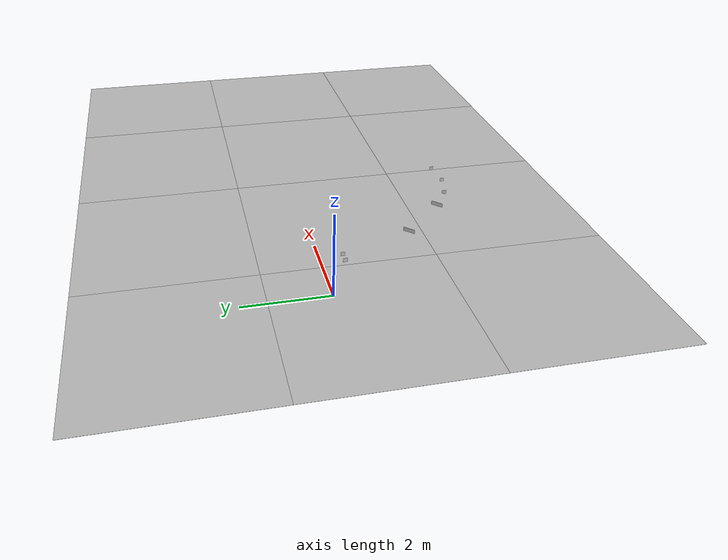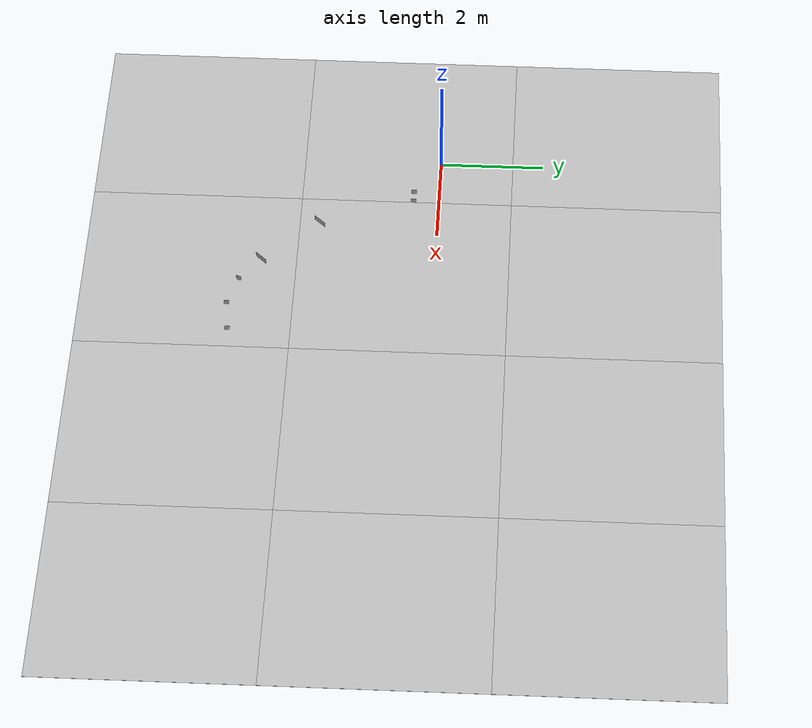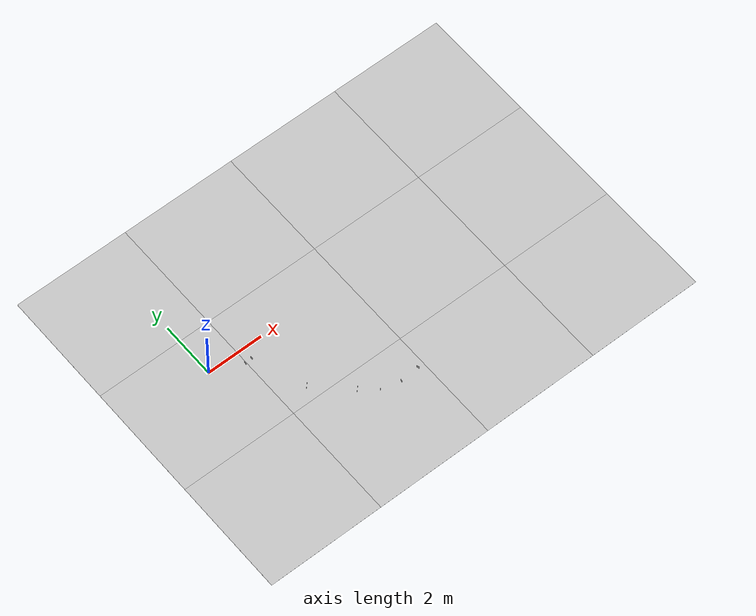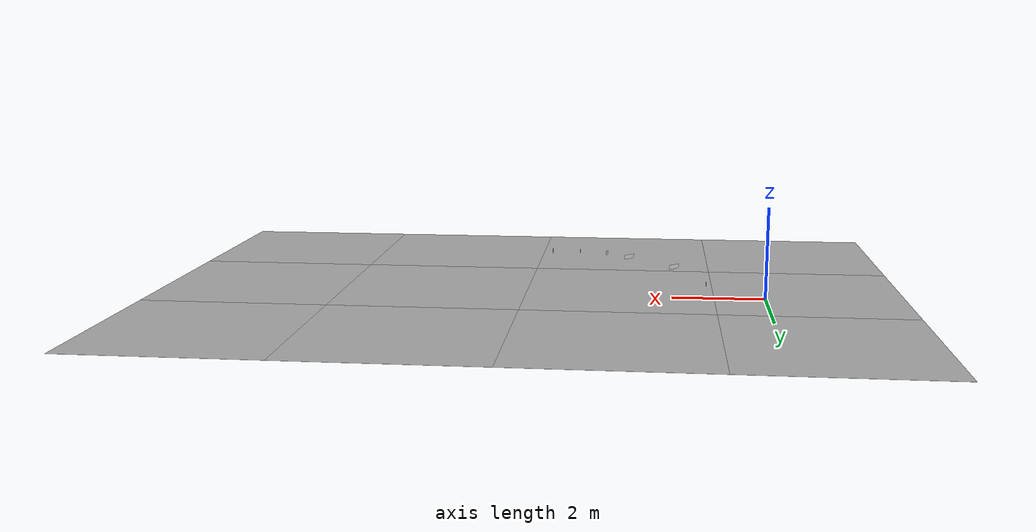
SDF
<sdf version='1.6'><world name='default'>
    <light name='sun_light' type='directional'>
      <pose frame=''>0 0 10 0 -0 0</pose>
      <diffuse>0.5 0.5 0.5 1</diffuse>
      <specular>0.1 0.1 0.1 1</specular>
      <direction>0.1 0.1 -0.9</direction>
      <attenuation>
        <range>20</range>
        <constant>0.5</constant>
        <linear>0.01</linear>
        <quadratic>0.001</quadratic>
      </attenuation>
      <cast_shadows>1</cast_shadows>
    </light>

    <model name='Tile/0-0'>
      <static>1</static>
      <link name='link'>
        <collision name='collision'>
          <geometry>
            <plane>
              <normal>0 0 1</normal>
              <size>4.096 4.096</size>
            </plane>
          </geometry>
          <surface>
            <friction>
              <ode>
                <mu>100</mu>
                <mu2>50</mu2>
              </ode>
              <torsional>
                <ode/>
              </torsional>
            </friction>
            <contact>
              <ode/>
            </contact>
            <bounce/>
          </surface>
          <max_contacts>10</max_contacts>
        </collision>
        <visual name='visual'>
          <cast_shadows>0</cast_shadows>
          <geometry>
            <plane>
              <normal>0 0 1</normal>
              <size>4.096 4.096</size>
            </plane>
          </geometry>
          <material>
            <script>
              <uri>file://materials/scripts</uri>
              <uri>file://materials/textures</uri>
              <name>Tile/5eab350b8220ac9944dbdfa4ac3288c7c17e24c3bf5df0dfcf6173d64dae00a1</name>
            </script>
          </material>
        </visual>
        <self_collide>0</self_collide>
        <enable_wind>0</enable_wind>
        <kinematic>0</kinematic>
      </link>
      <pose frame=''>-0.952 -4.7318828554324615 0 0 -0 0</pose>
    </model>

    <model name='Tile/0-1'>
      <static>1</static>
      <link name='link'>
        <collision name='collision'>
          <geometry>
            <plane>
              <normal>0 0 1</normal>
              <size>4.096 4.096</size>
            </plane>
          </geometry>
          <surface>
            <friction>
              <ode>
                <mu>100</mu>
                <mu2>50</mu2>
              </ode>
              <torsional>
                <ode/>
              </torsional>
            </friction>
            <contact>
              <ode/>
            </contact>
            <bounce/>
          </surface>
          <max_contacts>10</max_contacts>
        </collision>
        <visual name='visual'>
          <cast_shadows>0</cast_shadows>
          <geometry>
            <plane>
              <normal>0 0 1</normal>
              <size>4.096 4.096</size>
            </plane>
          </geometry>
          <material>
            <script>
              <uri>file://materials/scripts</uri>
              <uri>file://materials/textures</uri>
              <name>Tile/c5e70cb4f74d9a6a7db8f5388651b8d9921ff3ba49a868cc8df2fe43ad7eaba7</name>
            </script>
          </material>
        </visual>
        <self_collide>0</self_collide>
        <enable_wind>0</enable_wind>
        <kinematic>0</kinematic>
      </link>
      <pose frame=''>-0.952 -0.6358828554324614 0 0 -0 0</pose>
    </model>

    <model name='Tile/0-2'>
      <static>1</static>
      <link name='link'>
        <collision name='collision'>
          <geometry>
            <plane>
              <normal>0 0 1</normal>
              <size>4.096 4.096</size>
            </plane>
          </geometry>
          <surface>
            <friction>
              <ode>
                <mu>100</mu>
                <mu2>50</mu2>
              </ode>
              <torsional>
                <ode/>
              </torsional>
            </friction>
            <contact>
              <ode/>
            </contact>
            <bounce/>
          </surface>
          <max_contacts>10</max_contacts>
        </collision>
        <visual name='visual'>
          <cast_shadows>0</cast_shadows>
          <geometry>
            <plane>
              <normal>0 0 1</normal>
              <size>4.096 4.096</size>
            </plane>
          </geometry>
          <material>
            <script>
              <uri>file://materials/scripts</uri>
              <uri>file://materials/textures</uri>
              <name>Tile/5eab350b8220ac9944dbdfa4ac3288c7c17e24c3bf5df0dfcf6173d64dae00a1</name>
            </script>
          </material>
        </visual>
        <self_collide>0</self_collide>
        <enable_wind>0</enable_wind>
        <kinematic>0</kinematic>
      </link>
      <pose frame=''>-0.952 3.4601171445675387 0 0 -0 0</pose>
    </model>

    <model name='Tile/1-0'>
      <static>1</static>
      <link name='link'>
        <collision name='collision'>
          <geometry>
            <plane>
              <normal>0 0 1</normal>
              <size>4.096 4.096</size>
            </plane>
          </geometry>
          <surface>
            <friction>
              <ode>
                <mu>100</mu>
                <mu2>50</mu2>
              </ode>
              <torsional>
                <ode/>
              </torsional>
            </friction>
            <contact>
              <ode/>
            </contact>
            <bounce/>
          </surface>
          <max_contacts>10</max_contacts>
        </collision>
        <visual name='visual'>
          <cast_shadows>0</cast_shadows>
          <geometry>
            <plane>
              <normal>0 0 1</normal>
              <size>4.096 4.096</size>
            </plane>
          </geometry>
          <material>
            <script>
              <uri>file://materials/scripts</uri>
              <uri>file://materials/textures</uri>
              <name>Tile/9fc7447fabca1d56619040dcea33a57f4ff58d737741b9bbb703d121e1243900</name>
            </script>
          </material>
        </visual>
        <self_collide>0</self_collide>
        <enable_wind>0</enable_wind>
        <kinematic>0</kinematic>
      </link>
      <pose frame=''>3.144 -4.7318828554324615 0 0 -0 0</pose>
    </model>

    <model name='Tile/1-1'>
      <static>1</static>
      <link name='link'>
        <collision name='collision'>
          <geometry>
            <plane>
              <normal>0 0 1</normal>
              <size>4.096 4.096</size>
            </plane>
          </geometry>
          <surface>
            <friction>
              <ode>
                <mu>100</mu>
                <mu2>50</mu2>
              </ode>
              <torsional>
                <ode/>
              </torsional>
            </friction>
            <contact>
              <ode/>
            </contact>
            <bounce/>
          </surface>
          <max_contacts>10</max_contacts>
        </collision>
        <visual name='visual'>
          <cast_shadows>0</cast_shadows>
          <geometry>
            <plane>
              <normal>0 0 1</normal>
              <size>4.096 4.096</size>
            </plane>
          </geometry>
          <material>
            <script>
              <uri>file://materials/scripts</uri>
              <uri>file://materials/textures</uri>
              <name>Tile/4ffa4252f7b43ce874249ae99cfbf468917fc08a8e05582c6309f45822f80ca8</name>
            </script>
          </material>
        </visual>
        <self_collide>0</self_collide>
        <enable_wind>0</enable_wind>
        <kinematic>0</kinematic>
      </link>
      <pose frame=''>3.144 -0.6358828554324614 0 0 -0 0</pose>
    </model>

    <model name='Tile/1-2'>
      <static>1</static>
      <link name='link'>
        <collision name='collision'>
          <geometry>
            <plane>
              <normal>0 0 1</normal>
              <size>4.096 4.096</size>
            </plane>
          </geometry>
          <surface>
            <friction>
              <ode>
                <mu>100</mu>
                <mu2>50</mu2>
              </ode>
              <torsional>
                <ode/>
              </torsional>
            </friction>
            <contact>
              <ode/>
            </contact>
            <bounce/>
          </surface>
          <max_contacts>10</max_contacts>
        </collision>
        <visual name='visual'>
          <cast_shadows>0</cast_shadows>
          <geometry>
            <plane>
              <normal>0 0 1</normal>
              <size>4.096 4.096</size>
            </plane>
          </geometry>
          <material>
            <script>
              <uri>file://materials/scripts</uri>
              <uri>file://materials/textures</uri>
              <name>Tile/5eab350b8220ac9944dbdfa4ac3288c7c17e24c3bf5df0dfcf6173d64dae00a1</name>
            </script>
          </material>
        </visual>
        <self_collide>0</self_collide>
        <enable_wind>0</enable_wind>
        <kinematic>0</kinematic>
      </link>
      <pose frame=''>3.144 3.4601171445675387 0 0 -0 0</pose>
    </model>

    <model name='Tile/2-0'>
      <static>1</static>
      <link name='link'>
        <collision name='collision'>
          <geometry>
            <plane>
              <normal>0 0 1</normal>
              <size>4.096 4.096</size>
            </plane>
          </geometry>
          <surface>
            <friction>
              <ode>
                <mu>100</mu>
                <mu2>50</mu2>
              </ode>
              <torsional>
                <ode/>
              </torsional>
            </friction>
            <contact>
              <ode/>
            </contact>
            <bounce/>
          </surface>
          <max_contacts>10</max_contacts>
        </collision>
        <visual name='visual'>
          <cast_shadows>0</cast_shadows>
          <geometry>
            <plane>
              <normal>0 0 1</normal>
              <size>4.096 4.096</size>
            </plane>
          </geometry>
          <material>
            <script>
              <uri>file://materials/scripts</uri>
              <uri>file://materials/textures</uri>
              <name>Tile/b721f2ba1d11787ac616a5c0917c82ba89159740fab1cda6fdf95be7412fa464</name>
            </script>
          </material>
        </visual>
        <self_collide>0</self_collide>
        <enable_wind>0</enable_wind>
        <kinematic>0</kinematic>
      </link>
      <pose frame=''>7.24 -4.7318828554324615 0 0 -0 0</pose>
    </model>

    <model name='Tile/2-1'>
      <static>1</static>
      <link name='link'>
        <collision name='collision'>
          <geometry>
            <plane>
              <normal>0 0 1</normal>
              <size>4.096 4.096</size>
            </plane>
          </geometry>
          <surface>
            <friction>
              <ode>
                <mu>100</mu>
                <mu2>50</mu2>
              </ode>
              <torsional>
                <ode/>
              </torsional>
            </friction>
            <contact>
              <ode/>
            </contact>
            <bounce/>
          </surface>
          <max_contacts>10</max_contacts>
        </collision>
        <visual name='visual'>
          <cast_shadows>0</cast_shadows>
          <geometry>
            <plane>
              <normal>0 0 1</normal>
              <size>4.096 4.096</size>
            </plane>
          </geometry>
          <material>
            <script>
              <uri>file://materials/scripts</uri>
              <uri>file://materials/textures</uri>
              <name>Tile/4ab9ba03e26e3e5389dbc50160c11d142437b6fc2414447385ea09beb347e70d</name>
            </script>
          </material>
        </visual>
        <self_collide>0</self_collide>
        <enable_wind>0</enable_wind>
        <kinematic>0</kinematic>
      </link>
      <pose frame=''>7.24 -0.6358828554324614 0 0 -0 0</pose>
    </model>

    <model name='Tile/2-2'>
      <static>1</static>
      <link name='link'>
        <collision name='collision'>
          <geometry>
            <plane>
              <normal>0 0 1</normal>
              <size>4.096 4.096</size>
            </plane>
          </geometry>
          <surface>
            <friction>
              <ode>
                <mu>100</mu>
                <mu2>50</mu2>
              </ode>
              <torsional>
                <ode/>
              </torsional>
            </friction>
            <contact>
              <ode/>
            </contact>
            <bounce/>
          </surface>
          <max_contacts>10</max_contacts>
        </collision>
        <visual name='visual'>
          <cast_shadows>0</cast_shadows>
          <geometry>
            <plane>
              <normal>0 0 1</normal>
              <size>4.096 4.096</size>
            </plane>
          </geometry>
          <material>
            <script>
              <uri>file://materials/scripts</uri>
              <uri>file://materials/textures</uri>
              <name>Tile/5eab350b8220ac9944dbdfa4ac3288c7c17e24c3bf5df0dfcf6173d64dae00a1</name>
            </script>
          </material>
        </visual>
        <self_collide>0</self_collide>
        <enable_wind>0</enable_wind>
        <kinematic>0</kinematic>
      </link>
      <pose frame=''>7.24 3.4601171445675387 0 0 -0 0</pose>
    </model>

    <model name='Tile/3-0'>
      <static>1</static>
      <link name='link'>
        <collision name='collision'>
          <geometry>
            <plane>
              <normal>0 0 1</normal>
              <size>4.096 4.096</size>
            </plane>
          </geometry>
          <surface>
            <friction>
              <ode>
                <mu>100</mu>
                <mu2>50</mu2>
              </ode>
              <torsional>
                <ode/>
              </torsional>
            </friction>
            <contact>
              <ode/>
            </contact>
            <bounce/>
          </surface>
          <max_contacts>10</max_contacts>
        </collision>
        <visual name='visual'>
          <cast_shadows>0</cast_shadows>
          <geometry>
            <plane>
              <normal>0 0 1</normal>
              <size>4.096 4.096</size>
            </plane>
          </geometry>
          <material>
            <script>
              <uri>file://materials/scripts</uri>
              <uri>file://materials/textures</uri>
              <name>Tile/5eab350b8220ac9944dbdfa4ac3288c7c17e24c3bf5df0dfcf6173d64dae00a1</name>
            </script>
          </material>
        </visual>
        <self_collide>0</self_collide>
        <enable_wind>0</enable_wind>
        <kinematic>0</kinematic>
      </link>
      <pose frame=''>11.336 -4.7318828554324615 0 0 -0 0</pose>
    </model>

    <model name='Tile/3-1'>
      <static>1</static>
      <link name='link'>
        <collision name='collision'>
          <geometry>
            <plane>
              <normal>0 0 1</normal>
              <size>4.096 4.096</size>
            </plane>
          </geometry>
          <surface>
            <friction>
              <ode>
                <mu>100</mu>
                <mu2>50</mu2>
              </ode>
              <torsional>
                <ode/>
              </torsional>
            </friction>
            <contact>
              <ode/>
            </contact>
            <bounce/>
          </surface>
          <max_contacts>10</max_contacts>
        </collision>
        <visual name='visual'>
          <cast_shadows>0</cast_shadows>
          <geometry>
            <plane>
              <normal>0 0 1</normal>
              <size>4.096 4.096</size>
            </plane>
          </geometry>
          <material>
            <script>
              <uri>file://materials/scripts</uri>
              <uri>file://materials/textures</uri>
              <name>Tile/5eab350b8220ac9944dbdfa4ac3288c7c17e24c3bf5df0dfcf6173d64dae00a1</name>
            </script>
          </material>
        </visual>
        <self_collide>0</self_collide>
        <enable_wind>0</enable_wind>
        <kinematic>0</kinematic>
      </link>
      <pose frame=''>11.336 -0.6358828554324614 0 0 -0 0</pose>
    </model>

    <model name='Tile/3-2'>
      <static>1</static>
      <link name='link'>
        <collision name='collision'>
          <geometry>
            <plane>
              <normal>0 0 1</normal>
              <size>4.096 4.096</size>
            </plane>
          </geometry>
          <surface>
            <friction>
              <ode>
                <mu>100</mu>
                <mu2>50</mu2>
              </ode>
              <torsional>
                <ode/>
              </torsional>
            </friction>
            <contact>
              <ode/>
            </contact>
            <bounce/>
          </surface>
          <max_contacts>10</max_contacts>
        </collision>
        <visual name='visual'>
          <cast_shadows>0</cast_shadows>
          <geometry>
            <plane>
              <normal>0 0 1</normal>
              <size>4.096 4.096</size>
            </plane>
          </geometry>
          <material>
            <script>
              <uri>file://materials/scripts</uri>
              <uri>file://materials/textures</uri>
              <name>Tile/5eab350b8220ac9944dbdfa4ac3288c7c17e24c3bf5df0dfcf6173d64dae00a1</name>
            </script>
          </material>
        </visual>
        <self_collide>0</self_collide>
        <enable_wind>0</enable_wind>
        <kinematic>0</kinematic>
      </link>
      <pose frame=''>11.336 3.4601171445675387 0 0 -0 0</pose>
    </model>

    <model name='Sign/-13'>
      <static>1</static>
      <link name='link'>
        <visual name='visual'>
          <cast_shadows>0</cast_shadows>
          <geometry>
            <plane>
              <normal>0 0 1</normal>
              <size>0.1 0.1</size>
            </plane>
          </geometry>
          <material>
            <script>
              <uri>file://materials/scripts</uri>
              <uri>file://materials/textures</uri>
              <name>Sign/stvo-209-20</name>
            </script>
          </material>
        </visual>
        <self_collide>0</self_collide>
        <enable_wind>0</enable_wind>
        <kinematic>0</kinematic>
      </link>
      <pose frame=''>1.25 -0.49999999999999994 0.2 1.5707963267948966 0 4.71238898038469</pose>
    </model>

    <model name='Sign/-14'>
      <static>1</static>
      <link name='link'>
        <visual name='visual'>
          <cast_shadows>0</cast_shadows>
          <geometry>
            <plane>
              <normal>0 0 1</normal>
              <size>0.1 0.1</size>
            </plane>
          </geometry>
          <material>
            <script>
              <uri>file://materials/scripts</uri>
              <uri>file://materials/textures</uri>
              <name>Sign/stvo-206</name>
            </script>
          </material>
        </visual>
        <self_collide>0</self_collide>
        <enable_wind>0</enable_wind>
        <kinematic>0</kinematic>
      </link>
      <pose frame=''>0.9999999999999999 -0.49999999999999994 0.2 1.5707963267948966 0 4.71238898038469</pose>
    </model>

    <model name='Sign/-19'>
      <static>1</static>
      <link name='link'>
        <visual name='visual'>
          <cast_shadows>0</cast_shadows>
          <geometry>
            <plane>
              <normal>0 0 1</normal>
              <size>0.3 0.1</size>
            </plane>
          </geometry>
          <material>
            <script>
              <uri>file://materials/scripts</uri>
              <uri>file://materials/textures</uri>
              <name>Sign/stvo-625-11</name>
            </script>
          </material>
        </visual>
        <self_collide>0</self_collide>
        <enable_wind>0</enable_wind>
        <kinematic>0</kinematic>
      </link>
      <pose frame=''>1.924677310592165 -2.2823937572197006 0.2 1.5707963267948966 0 3.9269908169872414</pose>
    </model>

    <model name='Sign/-24'>
      <static>1</static>
      <link name='link'>
        <visual name='visual'>
          <cast_shadows>0</cast_shadows>
          <geometry>
            <plane>
              <normal>0 0 1</normal>
              <size>0.3 0.1</size>
            </plane>
          </geometry>
          <material>
            <script>
              <uri>file://materials/scripts</uri>
              <uri>file://materials/textures</uri>
              <name>Sign/stvo-625-11</name>
            </script>
          </material>
        </visual>
        <self_collide>0</self_collide>
        <enable_wind>0</enable_wind>
        <kinematic>0</kinematic>
      </link>
      <pose frame=''>2.9924085501838515 -3.3501249968113873 0.2 1.5707963267948966 0 3.9269908169872414</pose>
    </model>

    <model name='Sign/-29'>
      <static>1</static>
      <link name='link'>
        <visual name='visual'>
          <cast_shadows>0</cast_shadows>
          <geometry>
            <plane>
              <normal>0 0 1</normal>
              <size>0.1 0.1</size>
            </plane>
          </geometry>
          <material>
            <script>
              <uri>file://materials/scripts</uri>
              <uri>file://materials/textures</uri>
              <name>Sign/stvo-625-10</name>
            </script>
          </material>
        </visual>
        <self_collide>0</self_collide>
        <enable_wind>0</enable_wind>
        <kinematic>0</kinematic>
      </link>
      <pose frame=''>3.555228235944371 -3.744215583433723 0.2 1.5707963267948966 0 4.276056667386108</pose>
    </model>

    <model name='Sign/-34'>
      <static>1</static>
      <link name='link'>
        <visual name='visual'>
          <cast_shadows>0</cast_shadows>
          <geometry>
            <plane>
              <normal>0 0 1</normal>
              <size>0.1 0.1</size>
            </plane>
          </geometry>
          <material>
            <script>
              <uri>file://materials/scripts</uri>
              <uri>file://materials/textures</uri>
              <name>Sign/stvo-625-10</name>
            </script>
          </material>
        </visual>
        <self_collide>0</self_collide>
        <enable_wind>0</enable_wind>
        <kinematic>0</kinematic>
      </link>
      <pose frame=''>4.2188926604064445 -3.9220439300136016 0.2 1.5707963267948966 0 4.625122517784973</pose>
    </model>

    <model name='Sign/-39'>
      <static>1</static>
      <link name='link'>
        <visual name='visual'>
          <cast_shadows>0</cast_shadows>
          <geometry>
            <plane>
              <normal>0 0 1</normal>
              <size>0.1 0.1</size>
            </plane>
          </geometry>
          <material>
            <script>
              <uri>file://materials/scripts</uri>
              <uri>file://materials/textures</uri>
              <name>Sign/stvo-625-10</name>
            </script>
          </material>
        </visual>
        <self_collide>0</self_collide>
        <enable_wind>0</enable_wind>
        <kinematic>0</kinematic>
      </link>
      <pose frame=''>4.903354099336197 -3.8621613134866064 0.2 1.5707963267948966 0 4.974188368183839</pose>
    </model>
    </world></sdf>
